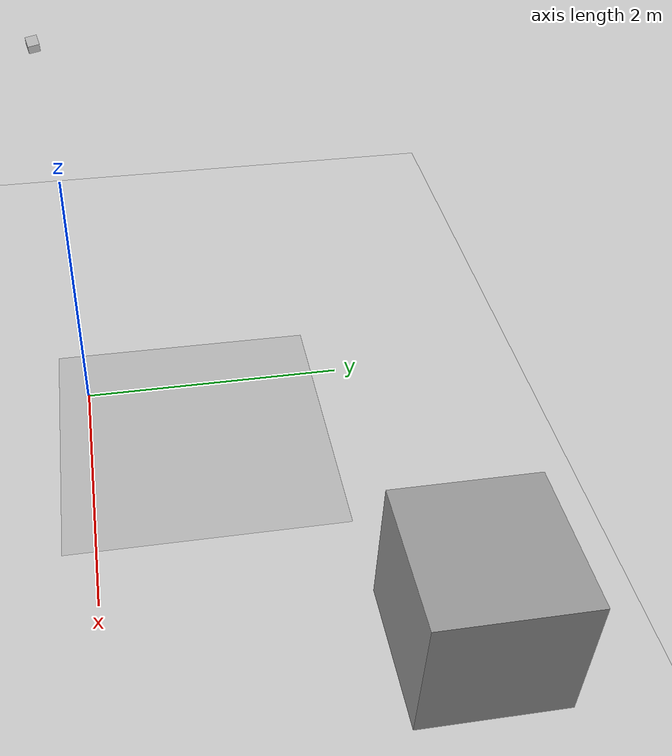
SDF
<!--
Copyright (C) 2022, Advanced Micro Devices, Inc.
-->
<sdf version="1.7">
 <world name="perception_camera_chessboard">
  <light name="sun" type="directional">
   <pose>0 0 10 0 -0 0</pose>
   <diffuse>0.8 0.8 0.8 1</diffuse>
   <specular>0.2 0.2 0.2 1</specular>
   <attenuation>
    <range>1000</range>
    <constant>0.9</constant>
    <linear>0.01</linear>
    <quadratic>0.001</quadratic>
   </attenuation>
   <direction>-0.5 0.1 -0.9</direction>
   <spot><inner_angle>0</inner_angle><outer_angle>0</outer_angle><falloff>0</falloff></spot>
  </light>
  <model name="ground_plane">
   <static>1</static>
   <link name="link">
    <collision name="collision">
     <geometry><plane><normal>0 0 1</normal><size>100 100</size></plane></geometry>
     <surface><friction><ode><mu>100</mu><mu2>50</mu2></ode></friction></surface>
    </collision>
    <visual name="visual">
     <cast_shadows>0</cast_shadows>
     <geometry><plane><normal>0 0 1</normal><size>100 100</size></plane></geometry>
     <material>
      <script><uri>file://media/materials/scripts/gazebo.material</uri><name>Gazebo/Grey</name></script>
     </material>
    </visual>
   </link>
  </model>
  <model name="distorted_camera">
   <link name="link">
    <pose>0.05 0.05 0.05 0 -0 0</pose>
    <inertial>
     <mass>0.1</mass>
     <inertia>
      <ixx>0.000166667</ixx>
      <iyy>0.000166667</iyy>
      <izz>0.000166667</izz>
      <ixy>0</ixy>
      <ixz>0</ixz>
      <iyz>0</iyz>
     </inertia>
    </inertial>
    <collision name="collision"><geometry><box><size>0.1 0.1 0.1</size></box></geometry></collision>
    <visual name="visual"><geometry><box><size>0.1 0.1 0.1</size></box></geometry></visual>
    <sensor name="camera" type="camera">
     <camera>
      <horizontal_fov>1.047</horizontal_fov>
      <image><width>640</width><height>480</height></image>
      <clip><near>0.1</near><far>100</far></clip>
      <distortion>
       <k1>-0.25</k1>
       <k2>0.12</k2>
       <k3>0</k3>
       <p1>-0.00028</p1>
       <p2>-5e-05</p2>
       <center>0.5 0.5</center>
      </distortion>
     </camera>
     <plugin name="camera_controller" filename="libgazebo_ros_camera.so">
      <alwaysOn>true</alwaysOn>
      <updateRate>0.0</updateRate>
      <cameraName>camera</cameraName>
      <imageTopicName>image</imageTopicName>
      <cameraInfoTopicName>camera_info</cameraInfoTopicName>
      <frameName>camera_link_raw</frameName>
      <hackBaseline>0.0</hackBaseline>
      <distortionK1>0.0</distortionK1>
      <distortionK2>0.0</distortionK2>
      <distortionK3>0.0</distortionK3>
      <distortionT1>0.0</distortionT1>
      <distortionT2>0.0</distortionT2>
      <CxPrime>0</CxPrime>
      <Cx>0.0</Cx>
      <Cy>0.0</Cy>
      <focalLength>0.0</focalLength>
     </plugin>
     <always_on>1</always_on>
     <update_rate>30</update_rate>
     <visualize>1</visualize>
    </sensor>
   </link>
   <pose>-2.51068 -0.28197 1.84283 0.122316 0.514293 0.244882</pose>
   <static>1</static>
  </model>
  <gravity>0 0 -9.8</gravity>
  <magnetic_field>6e-06 2.3e-05 -4.2e-05</magnetic_field>
  <atmosphere type="adiabatic"/>
  <physics type="ode">
   <max_step_size>0.001</max_step_size>
   <real_time_factor>1</real_time_factor>
   <real_time_update_rate>1000</real_time_update_rate>
  </physics>
  <scene><ambient>0.4 0.4 0.4 1</ambient><background>0.7 0.7 0.7 1</background><shadows>1</shadows></scene>
  <spherical_coordinates>
   <surface_model>EARTH_WGS84</surface_model>
   <latitude_deg>0</latitude_deg>
   <longitude_deg>0</longitude_deg>
   <elevation>0</elevation>
   <heading_deg>0</heading_deg>
  </spherical_coordinates>
  <model name="checkerboard_plane">
   <static>1</static>
   <link name="link">
    <visual name="visual">
     <geometry><mesh><uri>model://checkerboard_plane/meshes/checkerboard_plane.dae</uri></mesh></geometry>
    </visual>
   </link>
   <pose>0.635931 0.778274 0.1 0 -0 0</pose>
  </model>
  <model name="unit_box">
   <pose>2.64497 2.3111 0.499995 0 1e-05 0</pose>
   <link name="link">
    <inertial>
     <mass>1</mass>
     <inertia>
      <ixx>0.166667</ixx>
      <ixy>0</ixy>
      <ixz>0</ixz>
      <iyy>0.166667</iyy>
      <iyz>0</iyz>
      <izz>0.166667</izz>
     </inertia>
    </inertial>
    <collision name="collision"><geometry><box><size>1 1 1</size></box></geometry></collision>
    <visual name="visual">
     <geometry><box><size>1 1 1</size></box></geometry>
     <material>
      <script><name>Gazebo/Grey</name><uri>file://media/materials/scripts/gazebo.material</uri></script>
     </material>
    </visual>
   </link>
  </model>
 </world>
</sdf>
